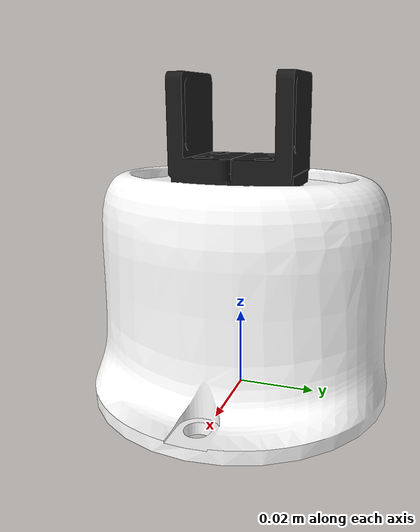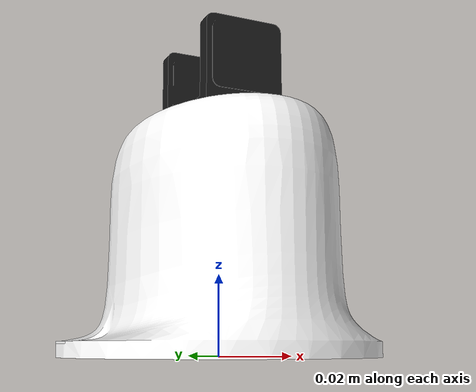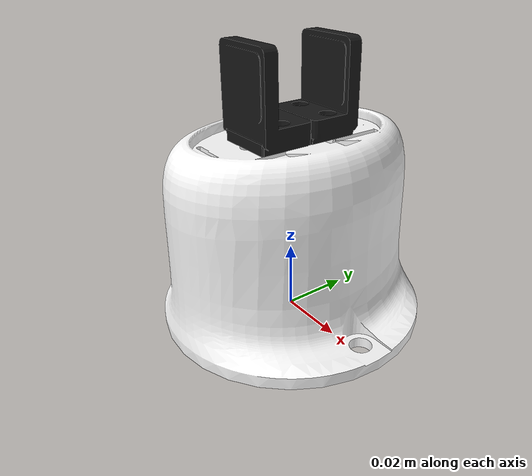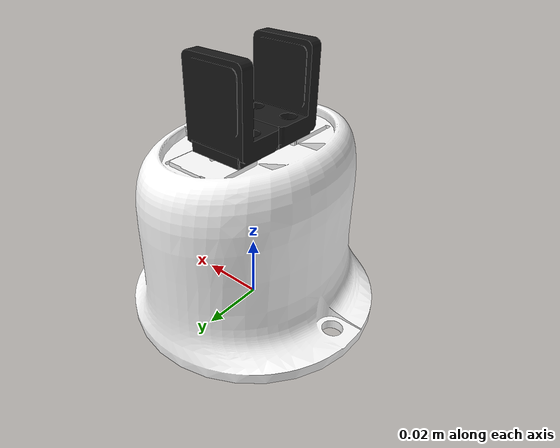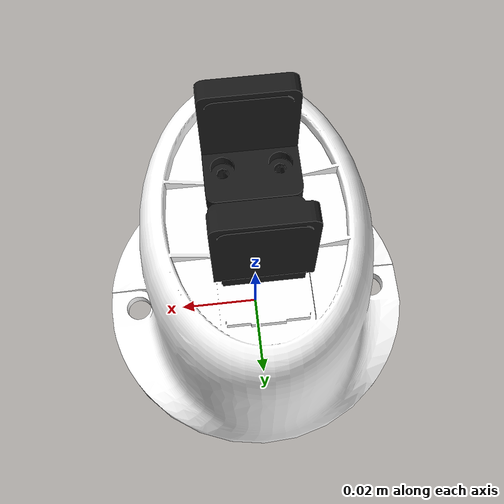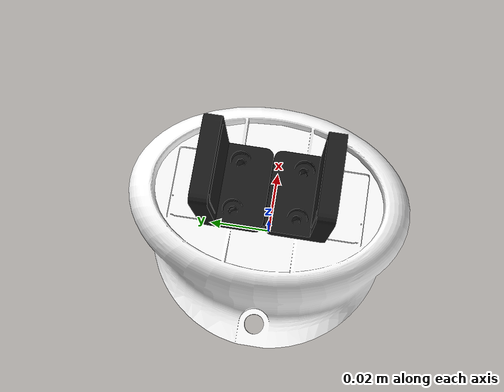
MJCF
<mujoco model="ufactory_lite6_gripper_wide">
  <compiler angle="radian" meshdir="assets" autolimits="true"/>

  <option integrator="implicitfast"/>

  <default>
    <default class="lite6">
      <geom type="mesh"/>
      <joint axis="0 0 1" damping="1" armature="0.1"/>
      <default class="visual">
        <geom contype="0" conaffinity="0" group="2" material="white"/>
      </default>
      <default class="collision">
        <geom group="3" mass="0" density="0"/>
      </default>
      <site size="0.001" rgba="0.5 0.5 0.5 0.3" group="4"/>
    </default>
  </default>

  <asset>
    <material name="white" rgba="1 1 1 1"/>
    <material name="black" rgba=".1 .1 .1 1"/>

    <mesh name="gripper_lite_body" file="visual/gripper_lite_body.stl"/>
    <mesh name="gripper_lite_left_finger_wide" file="visual/gripper_lite_left_finger_wide.stl"/>
    <mesh name="gripper_lite_right_finger_wide" file="visual/gripper_lite_right_finger_wide.stl"/>
    <mesh name="gripper_lite_body_c" file="collision/gripper_lite_body.stl"/>
    <mesh name="gripper_lite_left_finger_wide_base" file="collision/gripper_lite_left_finger_wide_base.stl"/>
    <mesh name="gripper_lite_right_finger_wide_base" file="collision/gripper_lite_right_finger_wide_base.stl"/>
    <mesh name="gripper_lite_left_finger_wide_tip" file="collision/gripper_lite_left_finger_wide_tip.stl"/>
    <mesh file="collision/gripper_lite_right_finger_wide_tip.stl"/>
  </asset>

  <worldbody>
    <body name="gripper_body" childclass="lite6">
      <inertial pos="0.0 0.0 0.026" quat="1 0 0 0" mass="0.26"
        diaginertia="0.00016117 0.000118 0.00014455" />
      <geom class="visual" mesh="gripper_lite_body" material="white"/>
      <geom name="gripper_lite_body_c" class="collision" mesh="gripper_lite_body_c"/>
      <!-- Finger and base separated to avoid convex hull preventing gripping -->
      <body name="gripper_left_finger" pos="0 0 0.054" quat="1 0 0 0">
        <inertial pos="0.0 -0.01 0.01" quat="1 0 0 0" mass="0.024"
          diaginertia="1.961e-6 2.274e-6 1.238e-6" />
        <joint name="gripper_left_finger" pos="0 0 0" axis="0 1 0" type="slide" limited="true" range="-0.0081 -1e-5" frictionloss="0.4" />
        <geom mesh="gripper_lite_left_finger_wide" class="visual" material="black"/>
        <geom name="gripper_left_finger_base" class="collision" mesh="gripper_lite_left_finger_wide_base" material="black" condim="1" solimp="2 1 0.01" solref="0.01 1" friction="6 0.5 0.1"/>
        <geom name="gripper_left_finger" class="collision" mesh="gripper_lite_left_finger_wide_tip" material="black" condim="4" solimp="2 1 0.01" solref="0.01 1" friction="6 0.5 0.1"/>
      </body>
      <body name="gripper_right_finger" pos="0 0 0.054" quat="1 0 0 0">
        <inertial pos="0.0 0.01 0.01" quat="1 0 0 0" mass="0.024"
          diaginertia="1.961e-6 2.274e-6 1.238e-6" />
        <joint name="gripper_right_finger" pos="0 0 0" axis="0 1 0" type="slide" limited="true" range="1e-5 0.0081" frictionloss="0.4" />
        <geom mesh="gripper_lite_right_finger_wide" class="visual" material="black"/>
        <geom name="gripper_right_finger_base" class="collision" mesh="gripper_lite_right_finger_wide_base" material="black" condim="1" solimp="2 1 0.01" solref="0.01 1" friction="5 0.5 0.1"/>
        <geom name="gripper_right_finger" class="collision" mesh="gripper_lite_right_finger_wide_tip" material="black" condim="4" solimp="2 1 0.01" solref="0.01 1" friction="5 0.5 0.1"/>
      </body>
      <!-- End effector reference point is in the centre at the tip of the grippers -->
      <site name="end_effector" pos="0 0 0.0811"/>
    </body>
  </worldbody>

  <equality>
    <joint joint1="gripper_left_finger" joint2="gripper_right_finger" polycoef="0 -1 0 0 0"/>
  </equality>

  <actuator>
    <motor name="gripper" joint="gripper_left_finger" forcerange="-10 10" ctrlrange="-10 10"/>
  </actuator>
</mujoco>
